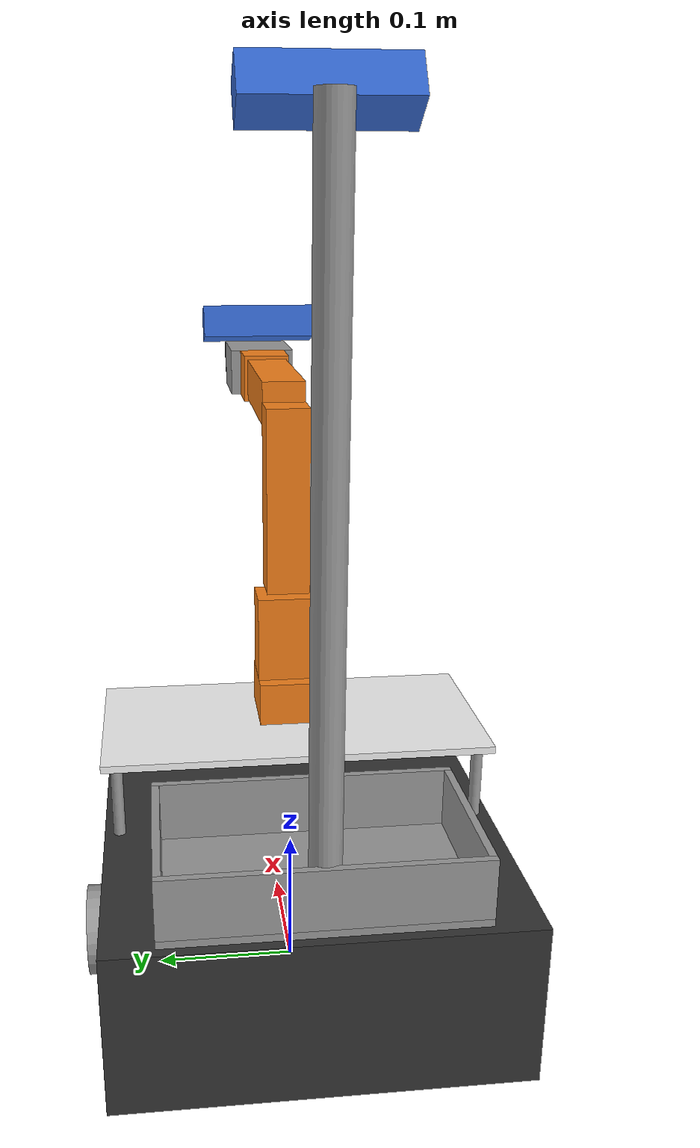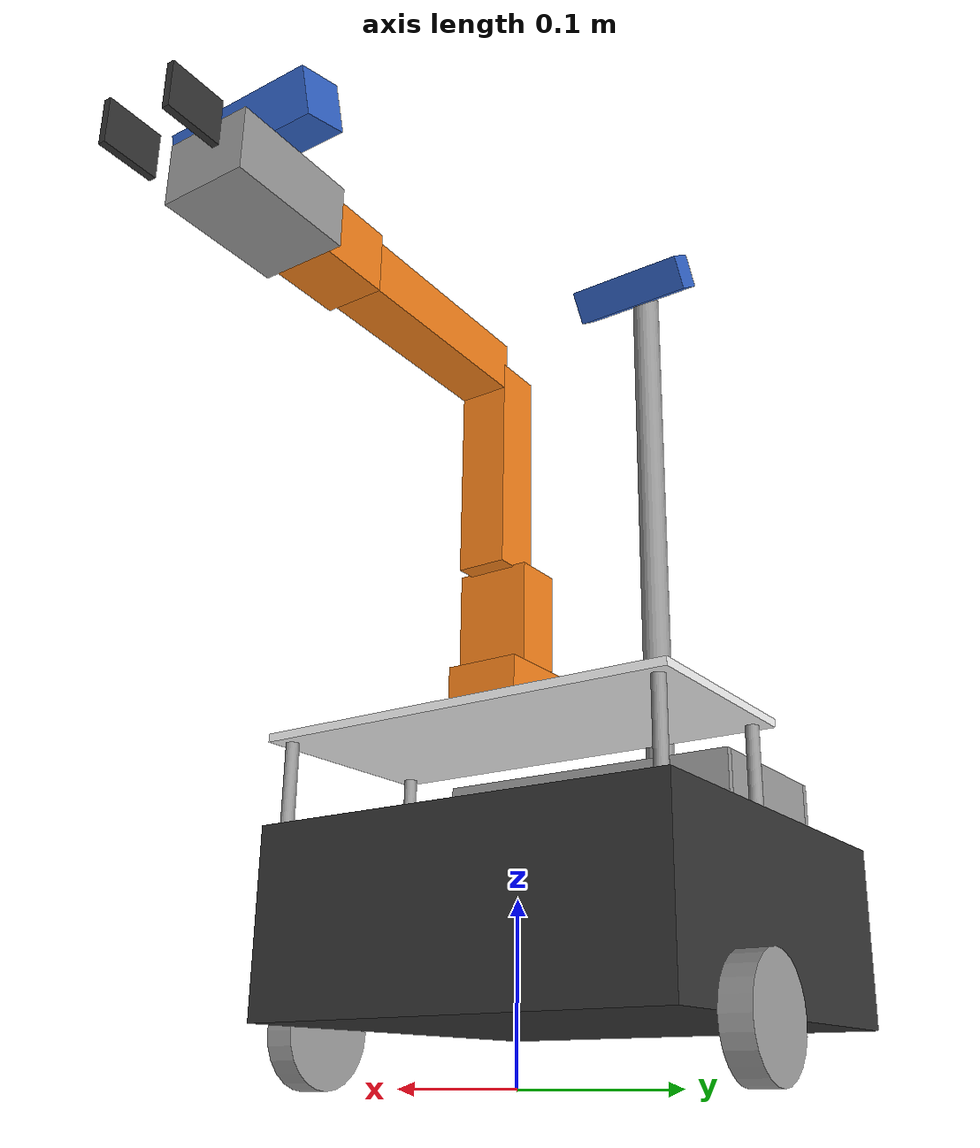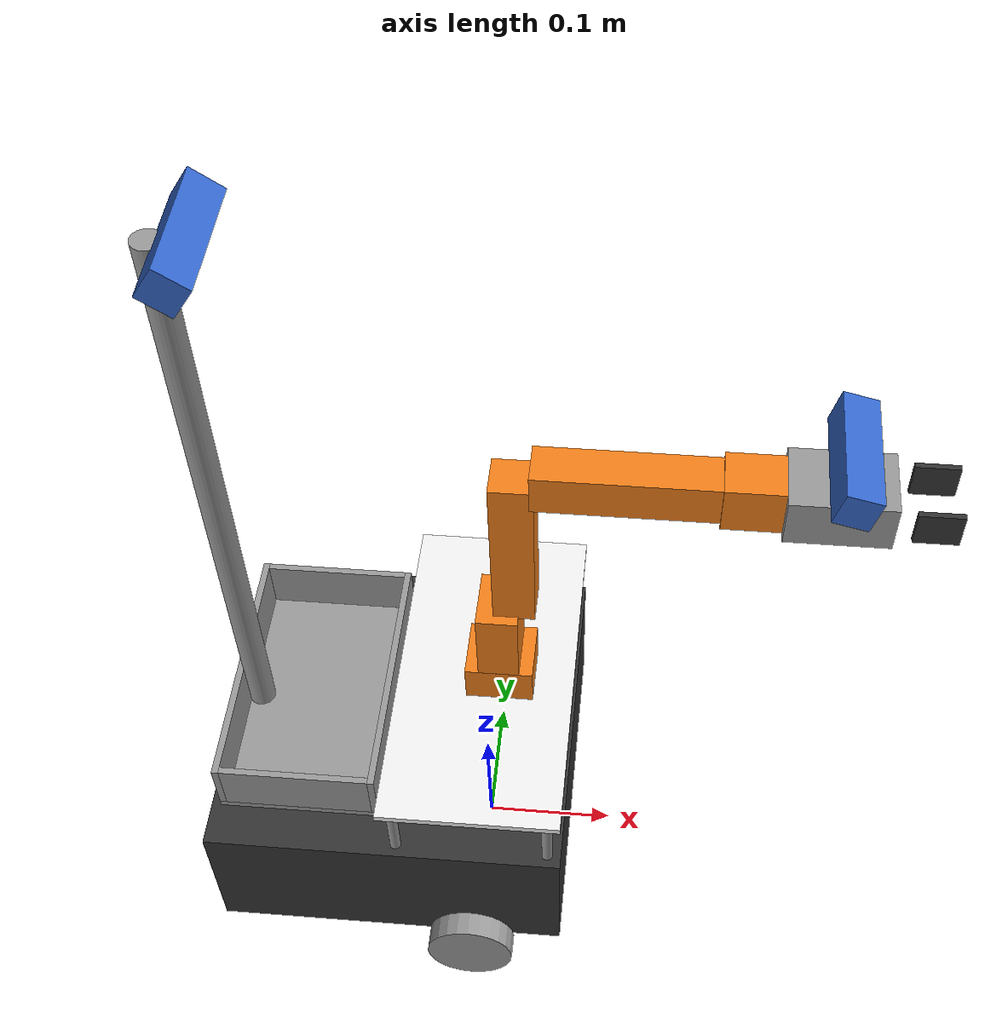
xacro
<?xml version="1.0"?>
<robot name="beebot" xmlns:xacro="http://www.ros.org/wiki/xacro">
  <xacro:arg name="mock_hardware" default="false"/>
  <xacro:arg name="mock_effort" default="0.0"/>
  <xacro:arg name="port" default="/dev/ttyACM0"/>

  <xacro:property name="PI" value="3.14159265"/>
  <!-- 차체 -->
  <xacro:property name="wheel_radius" value="0.033"/>
  <xacro:property name="wheel_width" value="0.018"/>
  <xacro:property name="wheel_separation" value="0.287"/>
  <xacro:property name="body_l" value="0.266"/>
  <xacro:property name="body_w" value="0.266"/>
  <xacro:property name="body_h" value="0.110"/>
  <xacro:property name="body_x" value="-0.064"/>   <!-- 바퀴 축 기준 본체 중심 (바퀴가 앞쪽) -->
  <xacro:property name="body_z" value="0.080"/>
  <xacro:property name="body_top" value="${body_z + body_h / 2}"/>
  <!-- 상판: 본체 앞쪽 절반 -->
  <xacro:property name="deck_standoff" value="0.050"/>
  <xacro:property name="deck_t" value="0.005"/>
  <xacro:property name="deck_l" value="${body_l / 2}"/>
  <xacro:property name="deck_x" value="${body_x + body_l / 4}"/>
  <xacro:property name="deck_top" value="${body_top + deck_standoff + deck_t}"/>
  <!-- 선가이드 폴: 본체 뒤쪽 끝 -->
  <xacro:property name="pole_h" value="0.450"/>
  <xacro:property name="pole_r" value="0.010"/>
  <xacro:property name="pole_x" value="${body_x - body_l / 2 + 0.020}"/>

  <material name="dark"><color rgba="0.2 0.2 0.2 1"/></material>
  <material name="grey"><color rgba="0.6 0.6 0.6 1"/></material>
  <material name="white"><color rgba="0.95 0.95 0.95 1"/></material>
  <material name="orange"><color rgba="0.95 0.5 0.1 1"/></material>
  <material name="blue"><color rgba="0.2 0.4 0.8 1"/></material>

  <!-- 관성: 균질 직육면체·원기둥·구 -->
  <xacro:macro name="box_inertia" params="m x y z *origin">
    <inertial>
      <xacro:insert_block name="origin"/>
      <mass value="${m}"/>
      <inertia ixx="${m * (y*y + z*z) / 12}" ixy="0" ixz="0" iyy="${m * (x*x + z*z) / 12}" iyz="0" izz="${m * (x*x + y*y) / 12}"/>
    </inertial>
  </xacro:macro>
  <xacro:macro name="cylinder_inertia" params="m r h *origin">
    <inertial>
      <xacro:insert_block name="origin"/>
      <mass value="${m}"/>
      <inertia ixx="${m * (3*r*r + h*h) / 12}" ixy="0" ixz="0" iyy="${m * (3*r*r + h*h) / 12}" iyz="0" izz="${m * r * r / 2}"/>
    </inertial>
  </xacro:macro>

  <!-- ================= 베이스 ================= -->
  <link name="base_footprint"/>
  <link name="base_link">
    <visual>
      <origin xyz="${body_x} 0 ${body_z}"/>
      <geometry><box size="${body_l} ${body_w} ${body_h}"/></geometry>
      <material name="dark"/>
    </visual>
    <collision>
      <origin xyz="${body_x} 0 ${body_z}"/>
      <geometry><box size="${body_l} ${body_w} ${body_h}"/></geometry>
    </collision>
    <xacro:box_inertia m="1.5" x="${body_l}" y="${body_w}" z="${body_h}"><origin xyz="${body_x} 0 ${body_z}"/></xacro:box_inertia>
  </link>
  <joint name="base_joint" type="fixed">
    <parent link="base_footprint"/>
    <child link="base_link"/>
    <origin xyz="0 0 0.010"/>
  </joint>

  <xacro:macro name="wheel" params="side y">
    <link name="wheel_${side}_link">
      <visual>
        <origin rpy="${-PI/2} 0 0"/>
        <geometry><cylinder radius="${wheel_radius}" length="${wheel_width}"/></geometry>
        <material name="grey"/>
      </visual>
      <collision>
        <origin rpy="${-PI/2} 0 0"/>
        <geometry><cylinder radius="${wheel_radius}" length="${wheel_width}"/></geometry>
      </collision>
      <xacro:cylinder_inertia m="0.03" r="${wheel_radius}" h="${wheel_width}"><origin rpy="${-PI/2} 0 0"/></xacro:cylinder_inertia>
    </link>
    <joint name="wheel_${side}_joint" type="continuous">
      <parent link="base_link"/>
      <child link="wheel_${side}_link"/>
      <origin xyz="0 ${y} ${wheel_radius - 0.010}"/>
      <axis xyz="0 1 0"/>
    </joint>
  </xacro:macro>
  <xacro:wheel side="left" y="${wheel_separation / 2}"/>
  <xacro:wheel side="right" y="${-wheel_separation / 2}"/>

  <xacro:macro name="caster" params="side y">
    <link name="caster_${side}_link">
      <collision><geometry><sphere radius="0.010"/></geometry></collision>
      <inertial><mass value="0.005"/><inertia ixx="1e-7" ixy="0" ixz="0" iyy="1e-7" iyz="0" izz="1e-7"/></inertial>
    </link>
    <joint name="caster_${side}_joint" type="fixed">
      <parent link="base_link"/>
      <child link="caster_${side}_link"/>
      <origin xyz="${body_x - body_l / 2 + 0.020} ${y} 0.000"/>
    </joint>
  </xacro:macro>
  <xacro:caster side="left" y="0.064"/>
  <xacro:caster side="right" y="-0.064"/>

  <link name="imu_link"/>
  <joint name="imu_joint" type="fixed">
    <parent link="base_link"/>
    <child link="imu_link"/>
    <origin xyz="${body_x} 0 0.068"/>
  </joint>

  <!-- ================= 상판 (앞쪽 절반, 스탠드오프 위) ================= -->
  <link name="deck_link">
    <visual>
      <origin xyz="0 0 ${-deck_t / 2}"/>
      <geometry><box size="${deck_l} ${body_w} ${deck_t}"/></geometry>
      <material name="white"/>
    </visual>
    <xacro:macro name="standoff" params="x y">
      <visual>
        <origin xyz="${x} ${y} ${-deck_t - deck_standoff / 2}"/>
        <geometry><cylinder radius="0.004" length="${deck_standoff}"/></geometry>
        <material name="grey"/>
      </visual>
    </xacro:macro>
    <xacro:standoff x="${deck_l / 2 - 0.01}" y="${body_w / 2 - 0.01}"/>
    <xacro:standoff x="${deck_l / 2 - 0.01}" y="${-body_w / 2 + 0.01}"/>
    <xacro:standoff x="${-deck_l / 2 + 0.01}" y="${body_w / 2 - 0.01}"/>
    <xacro:standoff x="${-deck_l / 2 + 0.01}" y="${-body_w / 2 + 0.01}"/>
    <collision>
      <origin xyz="0 0 ${-deck_t / 2}"/>
      <geometry><box size="${deck_l} ${body_w} ${deck_t}"/></geometry>
    </collision>
    <xacro:box_inertia m="0.2" x="${deck_l}" y="${body_w}" z="${deck_t}"><origin xyz="0 0 ${-deck_t / 2}"/></xacro:box_inertia>
  </link>
  <joint name="deck_joint" type="fixed">
    <parent link="base_link"/>
    <child link="deck_link"/>
    <origin xyz="${deck_x} 0 ${deck_top}"/>
  </joint>

  <!-- ================= 선가이드 폴 (뒤쪽 끝) + pole_cam ================= -->
  <!-- 적재함 (뒤쪽 절반, 퍽 운반): 바닥 윗면 z=0.140 (base_link 기준) · 가이드벽 4면 (높이 0.04, 두께 0.005)
       시뮬레이터는 같은 치수로 퍽 받침·가둠 판정 (simulator/main.py TRAY) -->
  <xacro:property name="tray_x0" value="-0.19"/>
  <xacro:property name="tray_x1" value="-0.07"/>
  <xacro:property name="tray_y" value="0.10"/>
  <xacro:property name="tray_floor_z" value="0.140"/>
  <xacro:property name="tray_wall_h" value="0.04"/>
  <xacro:property name="tray_wall_t" value="0.005"/>
  <link name="tray_link">
    <visual>
      <origin xyz="-0.13 0 0.1375"/>
      <geometry><box size="0.12 0.20 0.005"/></geometry>
      <material name="grey"/>
    </visual>
    <visual>
      <origin xyz="-0.1875 0 0.16"/>
      <geometry><box size="0.005 0.20 0.04"/></geometry>
      <material name="grey"/>
    </visual>
    <visual>
      <origin xyz="-0.0725 0 0.16"/>
      <geometry><box size="0.005 0.20 0.04"/></geometry>
      <material name="grey"/>
    </visual>
    <visual>
      <origin xyz="-0.13 0.0975 0.16"/>
      <geometry><box size="0.11 0.005 0.04"/></geometry>
      <material name="grey"/>
    </visual>
    <visual>
      <origin xyz="-0.13 -0.0975 0.16"/>
      <geometry><box size="0.11 0.005 0.04"/></geometry>
      <material name="grey"/>
    </visual>
    <collision>
      <origin xyz="-0.13 0 0.1375"/>
      <geometry><box size="0.12 0.20 0.005"/></geometry>
    </collision>
    <xacro:box_inertia m="0.05" x="0.12" y="0.20" z="0.005"><origin xyz="-0.13 0 0.1375"/></xacro:box_inertia>
  </link>
  <joint name="tray_joint" type="fixed">
    <parent link="base_link"/>
    <child link="tray_link"/>
    <origin xyz="0 0 0"/>
  </joint>

  <link name="cable_pole_link">
    <visual>
      <origin xyz="0 0 ${pole_h / 2}"/>
      <geometry><cylinder radius="${pole_r}" length="${pole_h}"/></geometry>
      <material name="grey"/>
    </visual>
    <collision>
      <origin xyz="0 0 ${pole_h / 2}"/>
      <geometry><cylinder radius="${pole_r}" length="${pole_h}"/></geometry>
    </collision>
    <xacro:cylinder_inertia m="0.1" r="${pole_r}" h="${pole_h}"><origin xyz="0 0 ${pole_h / 2}"/></xacro:cylinder_inertia>
  </link>
  <joint name="cable_pole_joint" type="fixed">
    <parent link="base_link"/>
    <child link="cable_pole_link"/>
    <origin xyz="${pole_x} 0 ${body_top}"/>
  </joint>

  <!-- 카메라: <이름>_link (x 앞) + <이름>_color_optical_frame (z 앞 · x 오른쪽 · y 아래) — RealSense 드라이버 publish_tf는 끈다 -->
  <xacro:macro name="camera" params="name parent *origin">
    <link name="${name}_link">
      <visual>
        <geometry><box size="0.025 0.090 0.025"/></geometry>
        <material name="blue"/>
      </visual>
      <collision><geometry><box size="0.025 0.090 0.025"/></geometry></collision>
      <xacro:box_inertia m="0.07" x="0.025" y="0.090" z="0.025"><origin xyz="0 0 0"/></xacro:box_inertia>
    </link>
    <joint name="${name}_joint" type="fixed">
      <parent link="${parent}"/>
      <child link="${name}_link"/>
      <xacro:insert_block name="origin"/>
    </joint>
    <link name="${name}_color_optical_frame"/>
    <joint name="${name}_optical_joint" type="fixed">
      <parent link="${name}_link"/>
      <child link="${name}_color_optical_frame"/>
      <origin rpy="${-PI/2} 0 ${-PI/2}"/>
    </joint>
  </xacro:macro>
  <xacro:camera name="pole_cam" parent="cable_pole_link">
    <origin xyz="0.020 0 ${pole_h}" rpy="0 0.6 0"/>   <!-- 전방 하향 약 34° -->
  </xacro:camera>

  <xacro:macro name="box_link" params="name size xyz mass color:=orange">
    <link name="${name}">
      <visual>
        <origin xyz="${xyz}"/>
        <geometry><box size="${size}"/></geometry>
        <material name="${color}"/>
      </visual>
      <collision>
        <origin xyz="${xyz}"/>
        <geometry><box size="${size}"/></geometry>
      </collision>
      <inertial>
        <origin xyz="${xyz}"/>
        <mass value="${mass}"/>
        <inertia ixx="1e-4" ixy="0" ixz="0" iyy="1e-4" iyz="0" izz="1e-4"/>
      </inertial>
    </link>
  </xacro:macro>
  <!-- XM430-W350: 무부하 약 4.8rad/s (OM-X URDF velocity 4.8), stall 토크 약 4.1Nm -->
  <xacro:macro name="arm_joint" params="name parent child xyz axis lower upper">
    <joint name="${name}" type="revolute">
      <parent link="${parent}"/>
      <child link="${child}"/>
      <origin xyz="${xyz}"/>
      <axis xyz="${axis}"/>
      <limit lower="${lower}" upper="${upper}" effort="4.1" velocity="4.8"/>
    </joint>
  </xacro:macro>

  <xacro:property name="arm_mount_h" value="0.030"/>  <!-- 상판 위 joint1 높이 (베이스 서보) -->
  <xacro:box_link name="arm_base_link" size="0.050 0.045 ${arm_mount_h}" xyz="0.012 0 ${-arm_mount_h / 2}" mass="0.079"/>
  <joint name="arm_base_joint" type="fixed">
    <parent link="deck_link"/>
    <child link="arm_base_link"/>
    <origin xyz="0 0 ${arm_mount_h}"/>
  </joint>
  <xacro:box_link name="link2" size="0.030 0.045 0.0595" xyz="0 0 0.0298" mass="0.098"/>
  <xacro:box_link name="link3" size="0.030 0.030 0.130" xyz="0.012 0 0.064" mass="0.139"/>
  <xacro:box_link name="link4" size="0.124 0.030 0.030" xyz="0.062 0 0" mass="0.133"/>
  <xacro:box_link name="link5" size="0.040 0.035 0.035" xyz="0.020 0 0" mass="0.080"/>
  <xacro:box_link name="gripper_link" size="0.070 0.050 0.035" xyz="0.035 0 0" mass="0.110" color="grey"/>
  <xacro:arm_joint name="joint1" parent="arm_base_link" child="link2" xyz="0.012 0 0" axis="0 0 1" lower="${-PI}" upper="${PI}"/>
  <xacro:arm_joint name="joint2" parent="link2" child="link3" xyz="0 0 0.0595" axis="0 1 0" lower="-1.5" upper="1.5"/>
  <xacro:arm_joint name="joint3" parent="link3" child="link4" xyz="0.024 0 0.128" axis="0 1 0" lower="-1.5" upper="1.4"/>
  <xacro:arm_joint name="joint4" parent="link4" child="link5" xyz="0.124 0 0" axis="0 1 0" lower="-1.7" upper="1.97"/>
  <!-- 추가한 손목 roll — 4축 OM-X로는 옆 파지 때 손목을 못 돌린다 -->
  <xacro:arm_joint name="joint5" parent="link5" child="gripper_link" xyz="0.040 0 0" axis="1 0 0" lower="${-PI}" upper="${PI}"/>

  <!-- 그리퍼: OM-X와 같은 평행 그리퍼, 왼쪽만 구동(position)하고 오른쪽은 mimic -->
  <xacro:box_link name="gripper_left_link" size="0.030 0.004 0.025" xyz="0.015 0 0" mass="0.001" color="dark"/>
  <xacro:box_link name="gripper_right_link" size="0.030 0.004 0.025" xyz="0.015 0 0" mass="0.001" color="dark"/>
  <joint name="gripper_left_joint" type="prismatic">
    <parent link="gripper_link"/>
    <child link="gripper_left_link"/>
    <origin xyz="0.0817 0.021 0"/>
    <axis xyz="0 1 0"/>
    <limit lower="-0.011" upper="0.02" effort="4.1" velocity="4.8"/>
  </joint>
  <joint name="gripper_right_joint" type="prismatic">
    <parent link="gripper_link"/>
    <child link="gripper_right_link"/>
    <origin xyz="0.0817 -0.021 0"/>
    <axis xyz="0 -1 0"/>
    <limit lower="-0.011" upper="0.02" effort="4.1" velocity="4.8"/>
    <mimic joint="gripper_left_joint" multiplier="1"/>
  </joint>
  <link name="end_effector_link"/>
  <joint name="end_effector_joint" type="fixed">
    <parent link="gripper_link"/>
    <child link="end_effector_link"/>
    <origin xyz="0.126 0 0"/>
  </joint>
  <!-- gripper_cam: 그리퍼 몸체 위, 손끝(x) 방향을 약간 내려다본다 -->
  <xacro:camera name="gripper_cam" parent="gripper_link">
    <origin xyz="0.040 0 0.035" rpy="0 0.26 0"/>
  </xacro:camera>

  <!-- ================= ros2_control ================= -->
  <ros2_control name="BeebotSystem" type="system">
    <hardware>
      <plugin>control/BeebotSystemHardware</plugin>
      <param name="mock">$(arg mock_hardware)</param>
      <param name="mock_effort">$(arg mock_effort)</param>
      <param name="port">$(arg port)</param>
      <param name="baud_rate">1000000</param>
    </hardware>
    <xacro:macro name="wheel_if" params="name">
      <joint name="${name}">
        <command_interface name="velocity"/>
        <state_interface name="position"/>
        <state_interface name="velocity"/>
      </joint>
    </xacro:macro>
    <xacro:wheel_if name="wheel_left_joint"/>
    <xacro:wheel_if name="wheel_right_joint"/>
    <xacro:macro name="arm_if" params="name">
      <joint name="${name}">
        <command_interface name="position"/>
        <state_interface name="position"/>
        <state_interface name="velocity"/>
        <state_interface name="effort"/>
      </joint>
    </xacro:macro>
    <xacro:arm_if name="joint1"/>
    <xacro:arm_if name="joint2"/>
    <xacro:arm_if name="joint3"/>
    <xacro:arm_if name="joint4"/>
    <xacro:arm_if name="joint5"/>
    <xacro:arm_if name="gripper_left_joint"/>   <!-- 오른쪽 손가락은 mimic (robot_state_publisher가 계산) -->
    <sensor name="imu">
      <state_interface name="orientation.x"/>
      <state_interface name="orientation.y"/>
      <state_interface name="orientation.z"/>
      <state_interface name="orientation.w"/>
      <state_interface name="angular_velocity.x"/>
      <state_interface name="angular_velocity.y"/>
      <state_interface name="angular_velocity.z"/>
      <state_interface name="linear_acceleration.x"/>
      <state_interface name="linear_acceleration.y"/>
      <state_interface name="linear_acceleration.z"/>
      <param name="frame_id">imu_link</param>
    </sensor>
  </ros2_control>
</robot>
